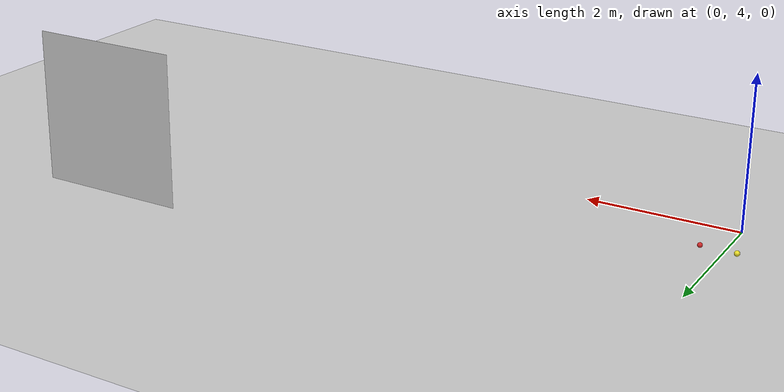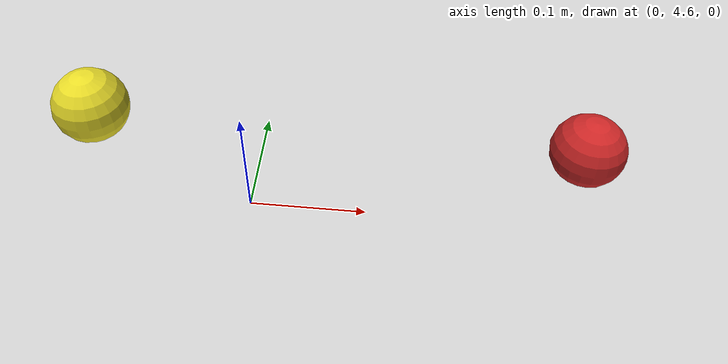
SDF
<sdf version="1.7">
 <world name="default">
  <light name="sun" type="directional">
   <pose>0 0 10 0 -0 0</pose>
   <diffuse>0.8 0.8 0.8 1</diffuse>
   <specular>0.2 0.2 0.2 1</specular>
   <attenuation>
    <range>1000</range>
    <constant>0.9</constant>
    <linear>0.01</linear>
    <quadratic>0.001</quadratic>
   </attenuation>
   <direction>-0.5 0.1 -0.9</direction>
   <spot><inner_angle>0</inner_angle><outer_angle>0</outer_angle><falloff>0</falloff></spot>
  </light>
  <model name="ground_plane">
   <static>1</static>
   <link name="link">
    <collision name="collision">
     <geometry><plane><normal>0 0 1</normal><size>100 100</size></plane></geometry>
     <surface>
      <contact><collide_bitmask>65535</collide_bitmask></contact>
      <friction><ode><mu>100</mu><mu2>50</mu2></ode></friction>
     </surface>
    </collision>
    <visual name="visual">
     <cast_shadows>0</cast_shadows>
     <geometry><plane><normal>0 0 1</normal><size>100 100</size></plane></geometry>
     <material>
      <script><uri>file://media/materials/scripts/gazebo.material</uri><name>Gazebo/Grey</name></script>
     </material>
    </visual>
   </link>
  </model>
  <gravity>0 0 -9.8</gravity>
  <magnetic_field>6e-06 2.3e-05 -4.2e-05</magnetic_field>
  <atmosphere type="adiabatic"/>
  <physics type="ode">
   <max_step_size>0.001</max_step_size>
   <real_time_factor>1</real_time_factor>
   <real_time_update_rate>1000</real_time_update_rate>
  </physics>
  <scene><ambient>0.4 0.4 0.4 1</ambient><background>0.7 0.7 0.7 1</background><shadows>1</shadows></scene>
  <audio><device>default</device></audio>
  <spherical_coordinates>
   <surface_model>EARTH_WGS84</surface_model>
   <latitude_deg>0</latitude_deg>
   <longitude_deg>0</longitude_deg>
   <elevation>0</elevation>
   <heading_deg>0</heading_deg>
  </spherical_coordinates>
  <model name="small_yellow_ball">
   <link name="link">
    <inertial>
     <mass>1</mass>
     <inertia><ixx>0.1</ixx><ixy>0</ixy><ixz>0</ixz><iyy>0.1</iyy><iyz>0</iyz><izz>0.1</izz></inertia>
    </inertial>
    <visual name="visual">
     <geometry><sphere><radius>0.035</radius></sphere></geometry>
     <material>
      <script><name>Gazebo/Yellow</name><uri>file://media/materials/scripts/gazebo.material</uri></script>
      <shader type="pixel"><normal_map>__default__</normal_map></shader>
      <ambient>1 1 0 1</ambient>
      <diffuse>0.7 0.7 0.7 1</diffuse>
      <specular>0.01 0.01 0.01 1</specular>
      <emissive>0 0 0 1</emissive>
     </material>
    </visual>
    <collision name="collision">
     <geometry><sphere><radius>0.035</radius></sphere></geometry>
     <surface>
      <friction>
       <ode><mu>1</mu><mu2>1</mu2><fdir1>0 0 0</fdir1><slip1>0</slip1><slip2>0</slip2></ode>
       <torsional>
        <coefficient>1</coefficient>
        <patch_radius>0</patch_radius>
        <surface_radius>0</surface_radius>
        <use_patch_radius>1</use_patch_radius>
        <ode><slip>0</slip></ode>
       </torsional>
      </friction>
      <bounce><restitution_coefficient>0</restitution_coefficient><threshold>1e+06</threshold></bounce>
      <contact>
       <collide_without_contact>0</collide_without_contact>
       <collide_without_contact_bitmask>1</collide_without_contact_bitmask>
       <collide_bitmask>1</collide_bitmask>
       <ode>
        <soft_cfm>0</soft_cfm>
        <soft_erp>0.2</soft_erp>
        <kp>1e+13</kp>
        <kd>1</kd>
        <max_vel>0.01</max_vel>
        <min_depth>0</min_depth>
       </ode>
       <bullet>
        <split_impulse>1</split_impulse>
        <split_impulse_penetration_threshold>-0.01</split_impulse_penetration_threshold>
        <soft_cfm>0</soft_cfm>
        <soft_erp>0.2</soft_erp>
        <kp>1e+13</kp>
        <kd>1</kd>
       </bullet>
      </contact>
     </surface>
    </collision>
   </link>
   <static>0</static>
   <pose>-0.159293 4.67064 0.035 0 -0 0</pose>
  </model>
  <model name="RoboCup SPL Ball">
   <static>0</static>
   <link name="ball">
    <inertial>
     <mass>0.0056</mass>
     <inertia>
      <ixx>2.37e-06</ixx>
      <iyy>2.37e-06</iyy>
      <izz>2.37e-06</izz>
      <ixy>0</ixy>
      <ixz>0</ixz>
      <iyz>0</iyz>
     </inertia>
    </inertial>
    <collision name="collision"><geometry><sphere><radius>0.0325</radius></sphere></geometry></collision>
    <visual name="visual">
     <geometry><sphere><radius>0.0325</radius></sphere></geometry>
     <material>
      <script><uri>file://media/materials/scripts/gazebo.material</uri><name>Gazebo/RedBright</name></script>
     </material>
    </visual>
   </link>
   <pose>0.288107 4.66155 0.0325 0 -0 0</pose>
  </model>
  <model name="spectrum_plane">
   <static>1</static>
   <link name="link">
    <visual name="visual">
     <geometry><mesh><uri>model://spectrum_plane/meshes/spectrum_plane.dae</uri></mesh></geometry>
    </visual>
   </link>
   <pose>7.28995 6.89612 0.972259 1.58883 -0 0</pose>
  </model>
 </world>
</sdf>
